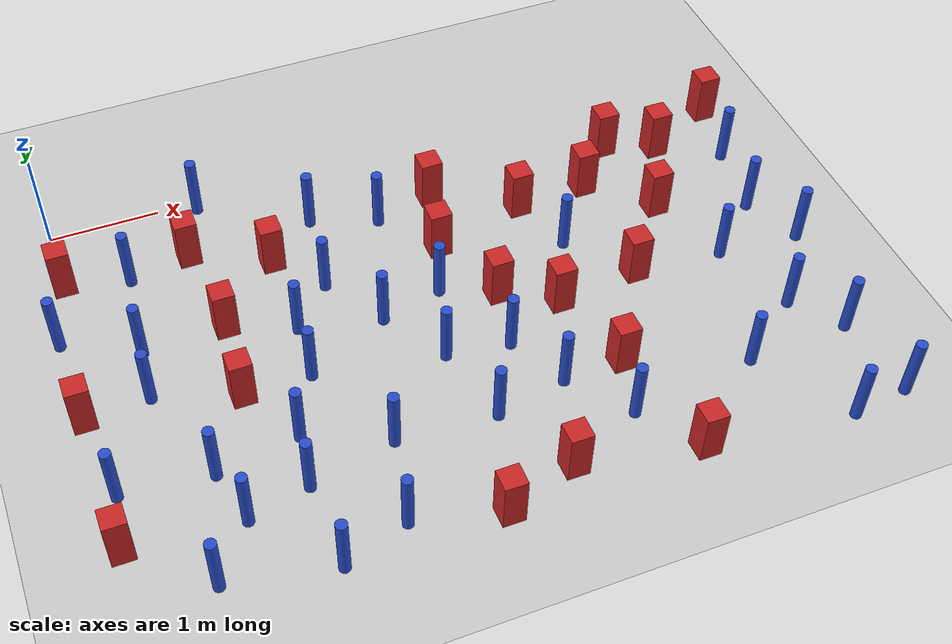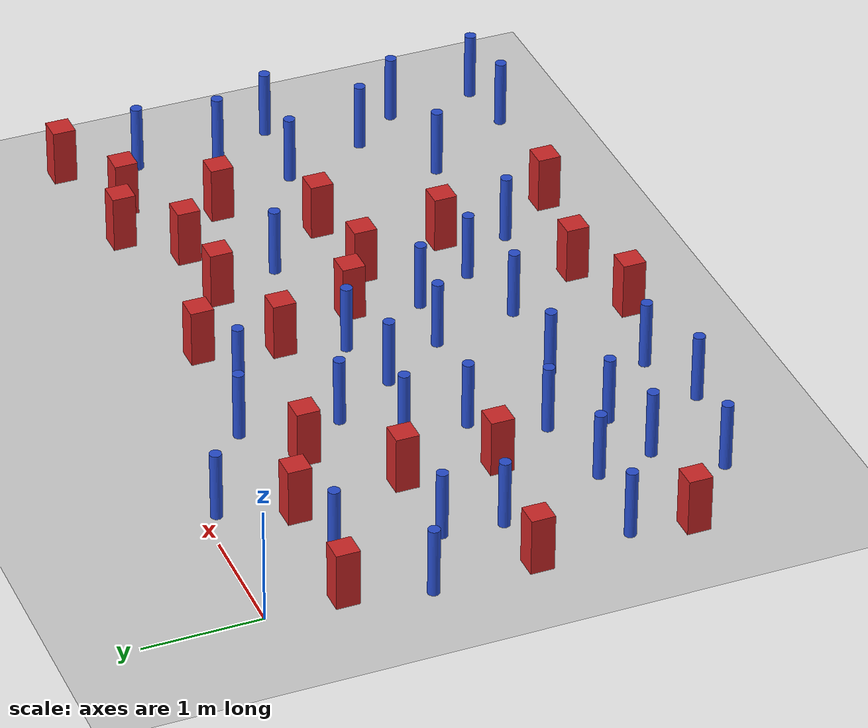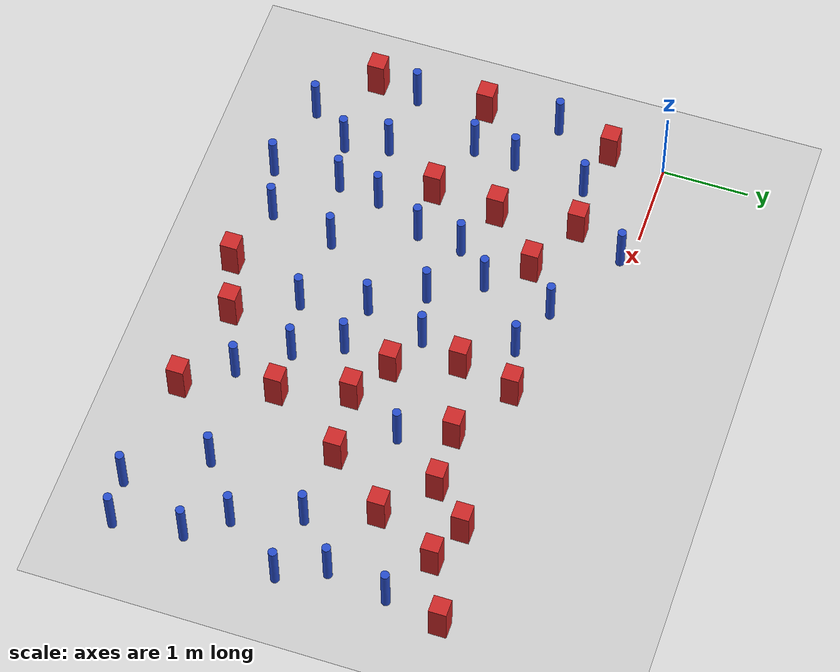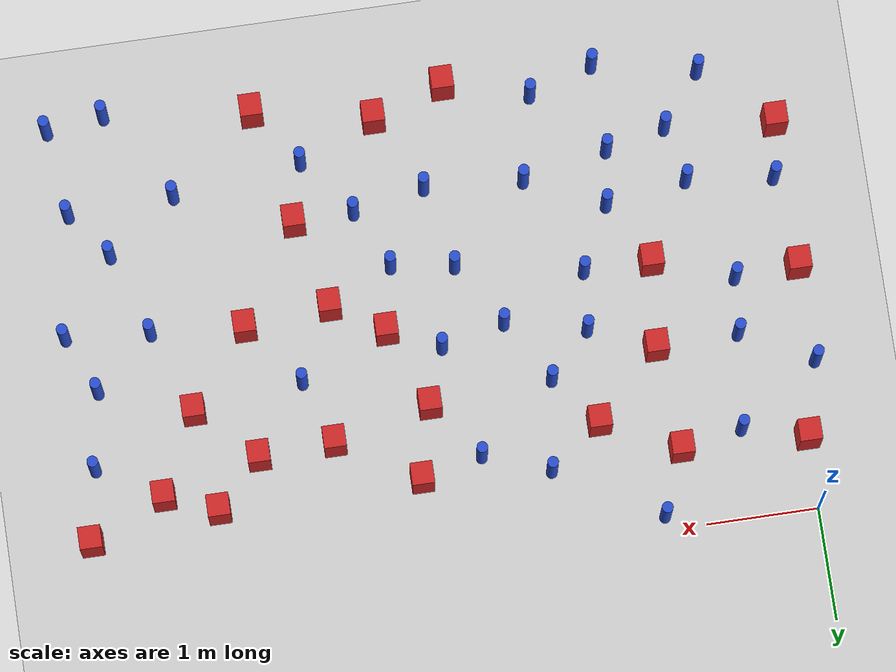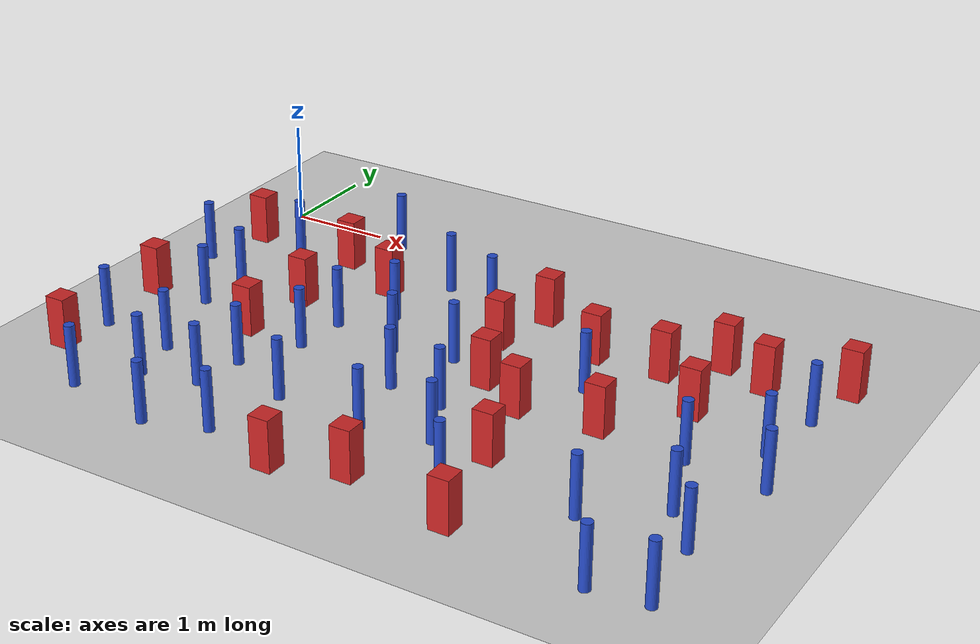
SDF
<sdf version="1.6">
 <world name="default">
  <model name="ground_plane">
   <static>1</static>
   <link name="link">
    <collision name="collision">
     <geometry><plane><normal>0 0 1</normal><size>100 100</size></plane></geometry>
     <surface><friction><ode><mu>100</mu><mu2>50</mu2></ode></friction></surface>
    </collision>
    <visual name="visual">
     <cast_shadows>0</cast_shadows>
     <geometry><plane><normal>0 0 1</normal><size>100 100</size></plane></geometry>
     <material>
      <ambient>1.0 1.0 1.0 1.0</ambient>
      <diffuse>0.8 0.8 0.8 1.0</diffuse>
      <specular>0.01 0.01 0.01 1.000000</specular>
     </material>
    </visual>
   </link>
  </model>
  <model name="pole_obstacle3">
   <static>true</static>
   <pose>3.44390057278 -2.68241851468 2.88873142074e-08 -9.90536690232e-09 4.6021994898e-07 -1.20965994968e-07</pose>
   <link name="link">
    <pose>0 0 0.3 0 -0 0</pose>
    <inertial>
     <mass>1</mass>
     <inertia><ixx>0.145833</ixx><ixy>0</ixy><ixz>0</ixz><iyy>0.145833</iyy><iyz>0</iyz><izz>0.125</izz></inertia>
    </inertial>
    <collision name="collision">
     <geometry><cylinder><radius>0.05</radius><length>.6</length></cylinder></geometry>
    </collision>
    <visual name="visual">
     <geometry><cylinder><radius>0.05</radius><length>.6</length></cylinder></geometry>
     <material>
      <script><name>Gazebo/Blue</name><uri>file://media/materials/scripts/gazebo.material</uri></script>
     </material>
    </visual>
   </link>
  </model>
  <model name="pole_obstacle12">
   <static>true</static>
   <pose>0.424822566646 -2.14659219355 2.88873142074e-08 -9.90536689663e-09 4.60219948993e-07 -1.20965994959e-07</pose>
   <link name="link">
    <pose>0 0 0.3 0 -0 0</pose>
    <inertial>
     <mass>1</mass>
     <inertia><ixx>0.145833</ixx><ixy>0</ixy><ixz>0</ixz><iyy>0.145833</iyy><iyz>0</iyz><izz>0.125</izz></inertia>
    </inertial>
    <collision name="collision">
     <geometry><cylinder><radius>0.05</radius><length>.6</length></cylinder></geometry>
    </collision>
    <visual name="visual">
     <geometry><cylinder><radius>0.05</radius><length>.6</length></cylinder></geometry>
     <material>
      <script><name>Gazebo/Blue</name><uri>file://media/materials/scripts/gazebo.material</uri></script>
     </material>
    </visual>
   </link>
  </model>
  <model name="pole_obstacle15">
   <static>true</static>
   <pose>4.36360542164 -1.75431057876 2.88873142074e-08 -9.90536689445e-09 4.60219948999e-07 -1.20965994956e-07</pose>
   <link name="link">
    <pose>0 0 0.3 0 -0 0</pose>
    <inertial>
     <mass>1</mass>
     <inertia><ixx>0.145833</ixx><ixy>0</ixy><ixz>0</ixz><iyy>0.145833</iyy><iyz>0</iyz><izz>0.125</izz></inertia>
    </inertial>
    <collision name="collision">
     <geometry><cylinder><radius>0.05</radius><length>.6</length></cylinder></geometry>
    </collision>
    <visual name="visual">
     <geometry><cylinder><radius>0.05</radius><length>.6</length></cylinder></geometry>
     <material>
      <script><name>Gazebo/Blue</name><uri>file://media/materials/scripts/gazebo.material</uri></script>
     </material>
    </visual>
   </link>
  </model>
  <model name="pole_obstacle34">
   <static>true</static>
   <pose>3.0510316653 -3.34758337727 2.88873142074e-08 -9.90536690232e-09 4.6021994898e-07 -1.20965994968e-07</pose>
   <link name="link">
    <pose>0 0 0.3 0 -0 0</pose>
    <inertial>
     <mass>1</mass>
     <inertia><ixx>0.145833</ixx><ixy>0</ixy><ixz>0</ixz><iyy>0.145833</iyy><iyz>0</iyz><izz>0.125</izz></inertia>
    </inertial>
    <collision name="collision">
     <geometry><cylinder><radius>0.05</radius><length>.6</length></cylinder></geometry>
    </collision>
    <visual name="visual">
     <geometry><cylinder><radius>0.05</radius><length>.6</length></cylinder></geometry>
     <material>
      <script><name>Gazebo/Blue</name><uri>file://media/materials/scripts/gazebo.material</uri></script>
     </material>
    </visual>
   </link>
  </model>
  <model name="square_post_obstacle31">
   <static>true</static>
   <pose>2.75952951863 -4.25308734683 8.22691968438e-08 7.22125133819e-06 -7.54495500217e-07 2.29674213826e-05</pose>
   <link name="link">
    <pose>0 0 0.25 0 -0 0</pose>
    <inertial>
     <mass>100</mass>
     <inertia>
      <ixx>0.166667</ixx>
      <ixy>0</ixy>
      <ixz>0</ixz>
      <iyy>0.166667</iyy>
      <iyz>0</iyz>
      <izz>0.166667</izz>
     </inertia>
    </inertial>
    <collision name="collision"><geometry><box><size>.2 .2 .5</size></box></geometry></collision>
    <visual name="visual">
     <geometry><box><size>.2 .2 .5</size></box></geometry>
     <material>
      <script><name>Gazebo/Red</name><uri>file://media/materials/scripts/gazebo.material</uri></script>
     </material>
    </visual>
   </link>
  </model>
  <model name="square_post_obstacle34">
   <static>true</static>
   <pose>4.24290436011 -3.19817687436 8.22691968438e-08 7.2212513382e-06 -7.54495500217e-07 2.29674213826e-05</pose>
   <link name="link">
    <pose>0 0 0.25 0 -0 0</pose>
    <inertial>
     <mass>100</mass>
     <inertia>
      <ixx>0.166667</ixx>
      <ixy>0</ixy>
      <ixz>0</ixz>
      <iyy>0.166667</iyy>
      <iyz>0</iyz>
      <izz>0.166667</izz>
     </inertia>
    </inertial>
    <collision name="collision"><geometry><box><size>.2 .2 .5</size></box></geometry></collision>
    <visual name="visual">
     <geometry><box><size>.2 .2 .5</size></box></geometry>
     <material>
      <script><name>Gazebo/Red</name><uri>file://media/materials/scripts/gazebo.material</uri></script>
     </material>
    </visual>
   </link>
  </model>
  <model name="pole_obstacle44">
   <static>true</static>
   <pose>3.09346758125 -1.89148213356 2.88873142074e-08 -9.90536689395e-09 4.60219949e-07 -1.20965994953e-07</pose>
   <link name="link">
    <pose>0 0 0.3 0 -0 0</pose>
    <inertial>
     <mass>1</mass>
     <inertia><ixx>0.145833</ixx><ixy>0</ixy><ixz>0</ixz><iyy>0.145833</iyy><iyz>0</iyz><izz>0.125</izz></inertia>
    </inertial>
    <collision name="collision">
     <geometry><cylinder><radius>0.05</radius><length>.6</length></cylinder></geometry>
    </collision>
    <visual name="visual">
     <geometry><cylinder><radius>0.05</radius><length>.6</length></cylinder></geometry>
     <material>
      <script><name>Gazebo/Blue</name><uri>file://media/materials/scripts/gazebo.material</uri></script>
     </material>
    </visual>
   </link>
  </model>
  <model name="pole_obstacle45">
   <static>true</static>
   <pose>2.16204232761 -3.28787041678 2.88873142074e-08 -9.90536690232e-09 4.6021994898e-07 -1.20965994968e-07</pose>
   <link name="link">
    <pose>0 0 0.3 0 -0 0</pose>
    <inertial>
     <mass>1</mass>
     <inertia><ixx>0.145833</ixx><ixy>0</ixy><ixz>0</ixz><iyy>0.145833</iyy><iyz>0</iyz><izz>0.125</izz></inertia>
    </inertial>
    <collision name="collision">
     <geometry><cylinder><radius>0.05</radius><length>.6</length></cylinder></geometry>
    </collision>
    <visual name="visual">
     <geometry><cylinder><radius>0.05</radius><length>.6</length></cylinder></geometry>
     <material>
      <script><name>Gazebo/Blue</name><uri>file://media/materials/scripts/gazebo.material</uri></script>
     </material>
    </visual>
   </link>
  </model>
  <model name="square_post_obstacle36">
   <static>true</static>
   <pose>3.56225931045 -2.10574706929 8.22691968438e-08 7.2212513382e-06 -7.54495500217e-07 2.29674213826e-05</pose>
   <link name="link">
    <pose>0 0 0.25 0 -0 0</pose>
    <inertial>
     <mass>100</mass>
     <inertia>
      <ixx>0.166667</ixx>
      <ixy>0</ixy>
      <ixz>0</ixz>
      <iyy>0.166667</iyy>
      <iyz>0</iyz>
      <izz>0.166667</izz>
     </inertia>
    </inertial>
    <collision name="collision"><geometry><box><size>.2 .2 .5</size></box></geometry></collision>
    <visual name="visual">
     <geometry><box><size>.2 .2 .5</size></box></geometry>
     <material>
      <script><name>Gazebo/Red</name><uri>file://media/materials/scripts/gazebo.material</uri></script>
     </material>
    </visual>
   </link>
  </model>
  <model name="square_post_obstacle37">
   <static>true</static>
   <pose>1.81397004332 -1.02523224052 8.22691968438e-08 7.2212513382e-06 -7.54495500217e-07 2.29674213826e-05</pose>
   <link name="link">
    <pose>0 0 0.25 0 -0 0</pose>
    <inertial>
     <mass>100</mass>
     <inertia>
      <ixx>0.166667</ixx>
      <ixy>0</ixy>
      <ixz>0</ixz>
      <iyy>0.166667</iyy>
      <iyz>0</iyz>
      <izz>0.166667</izz>
     </inertia>
    </inertial>
    <collision name="collision"><geometry><box><size>.2 .2 .5</size></box></geometry></collision>
    <visual name="visual">
     <geometry><box><size>.2 .2 .5</size></box></geometry>
     <material>
      <script><name>Gazebo/Red</name><uri>file://media/materials/scripts/gazebo.material</uri></script>
     </material>
    </visual>
   </link>
  </model>
  <model name="pole_obstacle52">
   <static>true</static>
   <pose>0.726385324433 -3.08385752263 2.88873142074e-08 -9.90536689636e-09 4.60219948994e-07 -1.20965994958e-07</pose>
   <link name="link">
    <pose>0 0 0.3 0 -0 0</pose>
    <inertial>
     <mass>1</mass>
     <inertia><ixx>0.145833</ixx><ixy>0</ixy><ixz>0</ixz><iyy>0.145833</iyy><iyz>0</iyz><izz>0.125</izz></inertia>
    </inertial>
    <collision name="collision">
     <geometry><cylinder><radius>0.05</radius><length>.6</length></cylinder></geometry>
    </collision>
    <visual name="visual">
     <geometry><cylinder><radius>0.05</radius><length>.6</length></cylinder></geometry>
     <material>
      <script><name>Gazebo/Blue</name><uri>file://media/materials/scripts/gazebo.material</uri></script>
     </material>
    </visual>
   </link>
  </model>
  <model name="square_post_obstacle45">
   <static>true</static>
   <pose>4.80310020649 -2.31193990285 8.22691968438e-08 7.2212513382e-06 -7.54495500217e-07 2.29674213826e-05</pose>
   <link name="link">
    <pose>0 0 0.25 0 -0 0</pose>
    <inertial>
     <mass>100</mass>
     <inertia>
      <ixx>0.166667</ixx>
      <ixy>0</ixy>
      <ixz>0</ixz>
      <iyy>0.166667</iyy>
      <iyz>0</iyz>
      <izz>0.166667</izz>
     </inertia>
    </inertial>
    <collision name="collision"><geometry><box><size>.2 .2 .5</size></box></geometry></collision>
    <visual name="visual">
     <geometry><box><size>.2 .2 .5</size></box></geometry>
     <material>
      <script><name>Gazebo/Red</name><uri>file://media/materials/scripts/gazebo.material</uri></script>
     </material>
    </visual>
   </link>
  </model>
  <model name="pole_obstacle61">
   <static>true</static>
   <pose>2.51964629609 -2.02960181023 2.88873142074e-08 -9.9053668955e-09 4.60219948996e-07 -1.20965994957e-07</pose>
   <link name="link">
    <pose>0 0 0.3 0 -0 0</pose>
    <inertial>
     <mass>1</mass>
     <inertia><ixx>0.145833</ixx><ixy>0</ixy><ixz>0</ixz><iyy>0.145833</iyy><iyz>0</iyz><izz>0.125</izz></inertia>
    </inertial>
    <collision name="collision">
     <geometry><cylinder><radius>0.05</radius><length>.6</length></cylinder></geometry>
    </collision>
    <visual name="visual">
     <geometry><cylinder><radius>0.05</radius><length>.6</length></cylinder></geometry>
     <material>
      <script><name>Gazebo/Blue</name><uri>file://media/materials/scripts/gazebo.material</uri></script>
     </material>
    </visual>
   </link>
  </model>
  <model name="pole_obstacle65">
   <static>true</static>
   <pose>5.79967173309 -4.39939911104 2.88873142074e-08 -9.90536690842e-09 4.60219948965e-07 -1.20965994976e-07</pose>
   <link name="link">
    <pose>0 0 0.3 0 -0 0</pose>
    <inertial>
     <mass>1</mass>
     <inertia><ixx>0.145833</ixx><ixy>0</ixy><ixz>0</ixz><iyy>0.145833</iyy><iyz>0</iyz><izz>0.125</izz></inertia>
    </inertial>
    <collision name="collision">
     <geometry><cylinder><radius>0.05</radius><length>.6</length></cylinder></geometry>
    </collision>
    <visual name="visual">
     <geometry><cylinder><radius>0.05</radius><length>.6</length></cylinder></geometry>
     <material>
      <script><name>Gazebo/Blue</name><uri>file://media/materials/scripts/gazebo.material</uri></script>
     </material>
    </visual>
   </link>
  </model>
  <model name="pole_obstacle66">
   <static>true</static>
   <pose>6.17075399183 -1.92445890788 2.88873142074e-08 -9.90536689445e-09 4.60219948999e-07 -1.20965994956e-07</pose>
   <link name="link">
    <pose>0 0 0.3 0 -0 0</pose>
    <inertial>
     <mass>1</mass>
     <inertia><ixx>0.145833</ixx><ixy>0</ixy><ixz>0</ixz><iyy>0.145833</iyy><iyz>0</iyz><izz>0.125</izz></inertia>
    </inertial>
    <collision name="collision">
     <geometry><cylinder><radius>0.05</radius><length>.6</length></cylinder></geometry>
    </collision>
    <visual name="visual">
     <geometry><cylinder><radius>0.05</radius><length>.6</length></cylinder></geometry>
     <material>
      <script><name>Gazebo/Blue</name><uri>file://media/materials/scripts/gazebo.material</uri></script>
     </material>
    </visual>
   </link>
  </model>
  <model name="square_post_obstacle53">
   <static>true</static>
   <pose>1.21595934458 -1.6210169275 8.22691968438e-08 7.2212513382e-06 -7.54495500217e-07 2.29674213826e-05</pose>
   <link name="link">
    <pose>0 0 0.25 0 -0 0</pose>
    <inertial>
     <mass>100</mass>
     <inertia>
      <ixx>0.166667</ixx>
      <ixy>0</ixy>
      <ixz>0</ixz>
      <iyy>0.166667</iyy>
      <iyz>0</iyz>
      <izz>0.166667</izz>
     </inertia>
    </inertial>
    <collision name="collision"><geometry><box><size>.2 .2 .5</size></box></geometry></collision>
    <visual name="visual">
     <geometry><box><size>.2 .2 .5</size></box></geometry>
     <material>
      <script><name>Gazebo/Red</name><uri>file://media/materials/scripts/gazebo.material</uri></script>
     </material>
    </visual>
   </link>
  </model>
  <model name="pole_obstacle72">
   <static>true</static>
   <pose>3.7025279139 -3.21415235285 2.88873142074e-08 -9.90536690232e-09 4.6021994898e-07 -1.20965994968e-07</pose>
   <link name="link">
    <pose>0 0 0.3 0 -0 0</pose>
    <inertial>
     <mass>1</mass>
     <inertia><ixx>0.145833</ixx><ixy>0</ixy><ixz>0</ixz><iyy>0.145833</iyy><iyz>0</iyz><izz>0.125</izz></inertia>
    </inertial>
    <collision name="collision">
     <geometry><cylinder><radius>0.05</radius><length>.6</length></cylinder></geometry>
    </collision>
    <visual name="visual">
     <geometry><cylinder><radius>0.05</radius><length>.6</length></cylinder></geometry>
     <material>
      <script><name>Gazebo/Blue</name><uri>file://media/materials/scripts/gazebo.material</uri></script>
     </material>
    </visual>
   </link>
  </model>
  <model name="square_post_obstacle67">
   <static>true</static>
   <pose>1.14408556625 -2.39514566028 8.22691968438e-08 7.2212513382e-06 -7.54495500217e-07 2.29674213826e-05</pose>
   <link name="link">
    <pose>0 0 0.25 0 -0 0</pose>
    <inertial>
     <mass>100</mass>
     <inertia>
      <ixx>0.166667</ixx>
      <ixy>0</ixy>
      <ixz>0</ixz>
      <iyy>0.166667</iyy>
      <iyz>0</iyz>
      <izz>0.166667</izz>
     </inertia>
    </inertial>
    <collision name="collision"><geometry><box><size>.2 .2 .5</size></box></geometry></collision>
    <visual name="visual">
     <geometry><box><size>.2 .2 .5</size></box></geometry>
     <material>
      <script><name>Gazebo/Red</name><uri>file://media/materials/scripts/gazebo.material</uri></script>
     </material>
    </visual>
   </link>
  </model>
  <model name="square_post_obstacle76">
   <static>true</static>
   <pose>5.24852123912 -0.716517219625 8.22691968438e-08 7.2212513382e-06 -7.54495500217e-07 2.29674213826e-05</pose>
   <link name="link">
    <pose>0 0 0.25 0 -0 0</pose>
    <inertial>
     <mass>100</mass>
     <inertia>
      <ixx>0.166667</ixx>
      <ixy>0</ixy>
      <ixz>0</ixz>
      <iyy>0.166667</iyy>
      <iyz>0</iyz>
      <izz>0.166667</izz>
     </inertia>
    </inertial>
    <collision name="collision"><geometry><box><size>.2 .2 .5</size></box></geometry></collision>
    <visual name="visual">
     <geometry><box><size>.2 .2 .5</size></box></geometry>
     <material>
      <script><name>Gazebo/Red</name><uri>file://media/materials/scripts/gazebo.material</uri></script>
     </material>
    </visual>
   </link>
  </model>
  <model name="pole_obstacle101">
   <static>true</static>
   <pose>0.478650169329 -4.06065488228 2.88873142074e-08 -9.90536689616e-09 4.60219948994e-07 -1.20965994955e-07</pose>
   <link name="link">
    <pose>0 0 0.3 0 -0 0</pose>
    <inertial>
     <mass>1</mass>
     <inertia><ixx>0.145833</ixx><ixy>0</ixy><ixz>0</ixz><iyy>0.145833</iyy><iyz>0</iyz><izz>0.125</izz></inertia>
    </inertial>
    <collision name="collision">
     <geometry><cylinder><radius>0.05</radius><length>.6</length></cylinder></geometry>
    </collision>
    <visual name="visual">
     <geometry><cylinder><radius>0.05</radius><length>.6</length></cylinder></geometry>
     <material>
      <script><name>Gazebo/Blue</name><uri>file://media/materials/scripts/gazebo.material</uri></script>
     </material>
    </visual>
   </link>
  </model>
  <model name="square_post_obstacle98">
   <static>true</static>
   <pose>0.00567447583688 -0.642046307654 8.22691968438e-08 7.2212513382e-06 -7.54495500217e-07 2.29674213826e-05</pose>
   <link name="link">
    <pose>0 0 0.25 0 -0 0</pose>
    <inertial>
     <mass>100</mass>
     <inertia>
      <ixx>0.166667</ixx>
      <ixy>0</ixy>
      <ixz>0</ixz>
      <iyy>0.166667</iyy>
      <iyz>0</iyz>
      <izz>0.166667</izz>
     </inertia>
    </inertial>
    <collision name="collision"><geometry><box><size>.2 .2 .5</size></box></geometry></collision>
    <visual name="visual">
     <geometry><box><size>.2 .2 .5</size></box></geometry>
     <material>
      <script><name>Gazebo/Red</name><uri>file://media/materials/scripts/gazebo.material</uri></script>
     </material>
    </visual>
   </link>
  </model>
  <model name="pole_obstacle108">
   <static>true</static>
   <pose>1.38805032513 -3.45853373213 2.88873142074e-08 -9.90536689791e-09 4.6021994899e-07 -1.20965994959e-07</pose>
   <link name="link">
    <pose>0 0 0.3 0 -0 0</pose>
    <inertial>
     <mass>1</mass>
     <inertia><ixx>0.145833</ixx><ixy>0</ixy><ixz>0</ixz><iyy>0.145833</iyy><iyz>0</iyz><izz>0.125</izz></inertia>
    </inertial>
    <collision name="collision">
     <geometry><cylinder><radius>0.05</radius><length>.6</length></cylinder></geometry>
    </collision>
    <visual name="visual">
     <geometry><cylinder><radius>0.05</radius><length>.6</length></cylinder></geometry>
     <material>
      <script><name>Gazebo/Blue</name><uri>file://media/materials/scripts/gazebo.material</uri></script>
     </material>
    </visual>
   </link>
  </model>
  <model name="pole_obstacle111">
   <static>true</static>
   <pose>2.28952541221 -0.654954358884 2.88873142074e-08 -9.90536689285e-09 4.60219949002e-07 -1.20965994953e-07</pose>
   <link name="link">
    <pose>0 0 0.3 0 -0 0</pose>
    <inertial>
     <mass>1</mass>
     <inertia><ixx>0.145833</ixx><ixy>0</ixy><ixz>0</ixz><iyy>0.145833</iyy><iyz>0</iyz><izz>0.125</izz></inertia>
    </inertial>
    <collision name="collision">
     <geometry><cylinder><radius>0.05</radius><length>.6</length></cylinder></geometry>
    </collision>
    <visual name="visual">
     <geometry><cylinder><radius>0.05</radius><length>.6</length></cylinder></geometry>
     <material>
      <script><name>Gazebo/Blue</name><uri>file://media/materials/scripts/gazebo.material</uri></script>
     </material>
    </visual>
   </link>
  </model>
  <model name="pole_obstacle126">
   <static>true</static>
   <pose>1.79387767147 -1.86467380096 2.88873142074e-08 -9.90536689672e-09 4.60219948993e-07 -1.20965994959e-07</pose>
   <link name="link">
    <pose>0 0 0.3 0 -0 0</pose>
    <inertial>
     <mass>1</mass>
     <inertia><ixx>0.145833</ixx><ixy>0</ixy><ixz>0</ixz><iyy>0.145833</iyy><iyz>0</iyz><izz>0.125</izz></inertia>
    </inertial>
    <collision name="collision">
     <geometry><cylinder><radius>0.05</radius><length>.6</length></cylinder></geometry>
    </collision>
    <visual name="visual">
     <geometry><cylinder><radius>0.05</radius><length>.6</length></cylinder></geometry>
     <material>
      <script><name>Gazebo/Blue</name><uri>file://media/materials/scripts/gazebo.material</uri></script>
     </material>
    </visual>
   </link>
  </model>
  <model name="square_post_obstacle123">
   <static>true</static>
   <pose>5.35264397972 -1.62712270653 8.22691968438e-08 7.2212513382e-06 -7.54495500217e-07 2.29674213826e-05</pose>
   <link name="link">
    <pose>0 0 0.25 0 -0 0</pose>
    <inertial>
     <mass>100</mass>
     <inertia>
      <ixx>0.166667</ixx>
      <ixy>0</ixy>
      <ixz>0</ixz>
      <iyy>0.166667</iyy>
      <iyz>0</iyz>
      <izz>0.166667</izz>
     </inertia>
    </inertial>
    <collision name="collision"><geometry><box><size>.2 .2 .5</size></box></geometry></collision>
    <visual name="visual">
     <geometry><box><size>.2 .2 .5</size></box></geometry>
     <material>
      <script><name>Gazebo/Red</name><uri>file://media/materials/scripts/gazebo.material</uri></script>
     </material>
    </visual>
   </link>
  </model>
  <model name="square_post_obstacle125">
   <static>true</static>
   <pose>1.13019518236 -0.687255394323 8.22691968438e-08 7.2212513382e-06 -7.54495500217e-07 2.29674213826e-05</pose>
   <link name="link">
    <pose>0 0 0.25 0 -0 0</pose>
    <inertial>
     <mass>100</mass>
     <inertia>
      <ixx>0.166667</ixx>
      <ixy>0</ixy>
      <ixz>0</ixz>
      <iyy>0.166667</iyy>
      <iyz>0</iyz>
      <izz>0.166667</izz>
     </inertia>
    </inertial>
    <collision name="collision"><geometry><box><size>.2 .2 .5</size></box></geometry></collision>
    <visual name="visual">
     <geometry><box><size>.2 .2 .5</size></box></geometry>
     <material>
      <script><name>Gazebo/Red</name><uri>file://media/materials/scripts/gazebo.material</uri></script>
     </material>
    </visual>
   </link>
  </model>
  <model name="pole_obstacle133">
   <static>true</static>
   <pose>1.40842903042 -4.24632810452 2.88873142074e-08 -9.90536689852e-09 4.60219948989e-07 -1.2096599496e-07</pose>
   <link name="link">
    <pose>0 0 0.3 0 -0 0</pose>
    <inertial>
     <mass>1</mass>
     <inertia><ixx>0.145833</ixx><ixy>0</ixy><ixz>0</ixz><iyy>0.145833</iyy><iyz>0</iyz><izz>0.125</izz></inertia>
    </inertial>
    <collision name="collision">
     <geometry><cylinder><radius>0.05</radius><length>.6</length></cylinder></geometry>
    </collision>
    <visual name="visual">
     <geometry><cylinder><radius>0.05</radius><length>.6</length></cylinder></geometry>
     <material>
      <script><name>Gazebo/Blue</name><uri>file://media/materials/scripts/gazebo.material</uri></script>
     </material>
    </visual>
   </link>
  </model>
  <model name="pole_obstacle134">
   <static>true</static>
   <pose>5.63955975305 -2.38056988034 2.88873142074e-08 -9.90536690245e-09 4.6021994898e-07 -1.20965994966e-07</pose>
   <link name="link">
    <pose>0 0 0.3 0 -0 0</pose>
    <inertial>
     <mass>1</mass>
     <inertia><ixx>0.145833</ixx><ixy>0</ixy><ixz>0</ixz><iyy>0.145833</iyy><iyz>0</iyz><izz>0.125</izz></inertia>
    </inertial>
    <collision name="collision">
     <geometry><cylinder><radius>0.05</radius><length>.6</length></cylinder></geometry>
    </collision>
    <visual name="visual">
     <geometry><cylinder><radius>0.05</radius><length>.6</length></cylinder></geometry>
     <material>
      <script><name>Gazebo/Blue</name><uri>file://media/materials/scripts/gazebo.material</uri></script>
     </material>
    </visual>
   </link>
  </model>
  <model name="pole_obstacle136">
   <static>true</static>
   <pose>-0.0565508192512 -3.00083900364 2.88873142074e-08 -9.90536692535e-09 4.60219948925e-07 -1.2096599499e-07</pose>
   <link name="link">
    <pose>0 0 0.3 0 -0 0</pose>
    <inertial>
     <mass>1</mass>
     <inertia><ixx>0.145833</ixx><ixy>0</ixy><ixz>0</ixz><iyy>0.145833</iyy><iyz>0</iyz><izz>0.125</izz></inertia>
    </inertial>
    <collision name="collision">
     <geometry><cylinder><radius>0.05</radius><length>.6</length></cylinder></geometry>
    </collision>
    <visual name="visual">
     <geometry><cylinder><radius>0.05</radius><length>.6</length></cylinder></geometry>
     <material>
      <script><name>Gazebo/Blue</name><uri>file://media/materials/scripts/gazebo.material</uri></script>
     </material>
    </visual>
   </link>
  </model>
  <model name="pole_obstacle146">
   <static>true</static>
   <pose>5.27447690551 -3.5860679777 2.88873142074e-08 -9.90536690245e-09 4.6021994898e-07 -1.20965994966e-07</pose>
   <link name="link">
    <pose>0 0 0.3 0 -0 0</pose>
    <inertial>
     <mass>1</mass>
     <inertia><ixx>0.145833</ixx><ixy>0</ixy><ixz>0</ixz><iyy>0.145833</iyy><iyz>0</iyz><izz>0.125</izz></inertia>
    </inertial>
    <collision name="collision">
     <geometry><cylinder><radius>0.05</radius><length>.6</length></cylinder></geometry>
    </collision>
    <visual name="visual">
     <geometry><cylinder><radius>0.05</radius><length>.6</length></cylinder></geometry>
     <material>
      <script><name>Gazebo/Blue</name><uri>file://media/materials/scripts/gazebo.material</uri></script>
     </material>
    </visual>
   </link>
  </model>
  <model name="square_post_obstacle141">
   <static>true</static>
   <pose>4.48025088239 -4.24490141962 8.22691968438e-08 7.2212513382e-06 -7.54495500217e-07 2.29674213826e-05</pose>
   <link name="link">
    <pose>0 0 0.25 0 -0 0</pose>
    <inertial>
     <mass>100</mass>
     <inertia>
      <ixx>0.166667</ixx>
      <ixy>0</ixy>
      <ixz>0</ixz>
      <iyy>0.166667</iyy>
      <iyz>0</iyz>
      <izz>0.166667</izz>
     </inertia>
    </inertial>
    <collision name="collision"><geometry><box><size>.2 .2 .5</size></box></geometry></collision>
    <visual name="visual">
     <geometry><box><size>.2 .2 .5</size></box></geometry>
     <material>
      <script><name>Gazebo/Red</name><uri>file://media/materials/scripts/gazebo.material</uri></script>
     </material>
    </visual>
   </link>
  </model>
  <model name="square_post_obstacle147">
   <static>true</static>
   <pose>4.03266309535 -2.39488780692 8.22691968438e-08 7.2212513382e-06 -7.54495500217e-07 2.29674213826e-05</pose>
   <link name="link">
    <pose>0 0 0.25 0 -0 0</pose>
    <inertial>
     <mass>100</mass>
     <inertia>
      <ixx>0.166667</ixx>
      <ixy>0</ixy>
      <ixz>0</ixz>
      <iyy>0.166667</iyy>
      <iyz>0</iyz>
      <izz>0.166667</izz>
     </inertia>
    </inertial>
    <collision name="collision"><geometry><box><size>.2 .2 .5</size></box></geometry></collision>
    <visual name="visual">
     <geometry><box><size>.2 .2 .5</size></box></geometry>
     <material>
      <script><name>Gazebo/Red</name><uri>file://media/materials/scripts/gazebo.material</uri></script>
     </material>
    </visual>
   </link>
  </model>
  <model name="square_post_obstacle148">
   <static>true</static>
   <pose>4.15664895691 -1.17455899612 8.22691968438e-08 7.2212513382e-06 -7.54495500217e-07 2.29674213826e-05</pose>
   <link name="link">
    <pose>0 0 0.25 0 -0 0</pose>
    <inertial>
     <mass>100</mass>
     <inertia>
      <ixx>0.166667</ixx>
      <ixy>0</ixy>
      <ixz>0</ixz>
      <iyy>0.166667</iyy>
      <iyz>0</iyz>
      <izz>0.166667</izz>
     </inertia>
    </inertial>
    <collision name="collision"><geometry><box><size>.2 .2 .5</size></box></geometry></collision>
    <visual name="visual">
     <geometry><box><size>.2 .2 .5</size></box></geometry>
     <material>
      <script><name>Gazebo/Red</name><uri>file://media/materials/scripts/gazebo.material</uri></script>
     </material>
    </visual>
   </link>
  </model>
  <model name="pole_obstacle162">
   <static>true</static>
   <pose>5.90314339456 -3.12809181744 2.88873142074e-08 -9.90536690245e-09 4.6021994898e-07 -1.20965994966e-07</pose>
   <link name="link">
    <pose>0 0 0.3 0 -0 0</pose>
    <inertial>
     <mass>1</mass>
     <inertia><ixx>0.145833</ixx><ixy>0</ixy><ixz>0</ixz><iyy>0.145833</iyy><iyz>0</iyz><izz>0.125</izz></inertia>
    </inertial>
    <collision name="collision">
     <geometry><cylinder><radius>0.05</radius><length>.6</length></cylinder></geometry>
    </collision>
    <visual name="visual">
     <geometry><cylinder><radius>0.05</radius><length>.6</length></cylinder></geometry>
     <material>
      <script><name>Gazebo/Blue</name><uri>file://media/materials/scripts/gazebo.material</uri></script>
     </material>
    </visual>
   </link>
  </model>
  <model name="square_post_obstacle163">
   <static>true</static>
   <pose>6.39876457684 -0.588968505366 8.22691968438e-08 7.2212513382e-06 -7.54495500217e-07 2.29674213826e-05</pose>
   <link name="link">
    <pose>0 0 0.25 0 -0 0</pose>
    <inertial>
     <mass>100</mass>
     <inertia>
      <ixx>0.166667</ixx>
      <ixy>0</ixy>
      <ixz>0</ixz>
      <iyy>0.166667</iyy>
      <iyz>0</iyz>
      <izz>0.166667</izz>
     </inertia>
    </inertial>
    <collision name="collision"><geometry><box><size>.2 .2 .5</size></box></geometry></collision>
    <visual name="visual">
     <geometry><box><size>.2 .2 .5</size></box></geometry>
     <material>
      <script><name>Gazebo/Red</name><uri>file://media/materials/scripts/gazebo.material</uri></script>
     </material>
    </visual>
   </link>
  </model>
  <model name="pole_obstacle166">
   <static>true</static>
   <pose>6.28476533647 -1.2334750411 2.88873142074e-08 -9.90536689445e-09 4.60219948999e-07 -1.20965994956e-07</pose>
   <link name="link">
    <pose>0 0 0.3 0 -0 0</pose>
    <inertial>
     <mass>1</mass>
     <inertia><ixx>0.145833</ixx><ixy>0</ixy><ixz>0</ixz><iyy>0.145833</iyy><iyz>0</iyz><izz>0.125</izz></inertia>
    </inertial>
    <collision name="collision">
     <geometry><cylinder><radius>0.05</radius><length>.6</length></cylinder></geometry>
    </collision>
    <visual name="visual">
     <geometry><cylinder><radius>0.05</radius><length>.6</length></cylinder></geometry>
     <material>
      <script><name>Gazebo/Blue</name><uri>file://media/materials/scripts/gazebo.material</uri></script>
     </material>
    </visual>
   </link>
  </model>
  <model name="pole_obstacle170">
   <static>true</static>
   <pose>-0.169045473421 -1.30887056522 2.88873142074e-08 -9.90536689579e-09 4.60219948995e-07 -1.20965994956e-07</pose>
   <link name="link">
    <pose>0 0 0.3 0 -0 0</pose>
    <inertial>
     <mass>1</mass>
     <inertia><ixx>0.145833</ixx><ixy>0</ixy><ixz>0</ixz><iyy>0.145833</iyy><iyz>0</iyz><izz>0.125</izz></inertia>
    </inertial>
    <collision name="collision">
     <geometry><cylinder><radius>0.05</radius><length>.6</length></cylinder></geometry>
    </collision>
    <visual name="visual">
     <geometry><cylinder><radius>0.05</radius><length>.6</length></cylinder></geometry>
     <material>
      <script><name>Gazebo/Blue</name><uri>file://media/materials/scripts/gazebo.material</uri></script>
     </material>
    </visual>
   </link>
  </model>
  <model name="square_post_obstacle179">
   <static>true</static>
   <pose>4.83645323461 -1.14035673554 8.22691968438e-08 7.2212513382e-06 -7.54495500217e-07 2.29674213826e-05</pose>
   <link name="link">
    <pose>0 0 0.25 0 -0 0</pose>
    <inertial>
     <mass>100</mass>
     <inertia>
      <ixx>0.166667</ixx>
      <ixy>0</ixy>
      <ixz>0</ixz>
      <iyy>0.166667</iyy>
      <iyz>0</iyz>
      <izz>0.166667</izz>
     </inertia>
    </inertial>
    <collision name="collision"><geometry><box><size>.2 .2 .5</size></box></geometry></collision>
    <visual name="visual">
     <geometry><box><size>.2 .2 .5</size></box></geometry>
     <material>
      <script><name>Gazebo/Red</name><uri>file://media/materials/scripts/gazebo.material</uri></script>
     </material>
    </visual>
   </link>
  </model>
  <model name="pole_obstacle185">
   <static>true</static>
   <pose>2.88433739516 -0.873487718742 2.88873142074e-08 -9.90536689285e-09 4.60219949002e-07 -1.20965994953e-07</pose>
   <link name="link">
    <pose>0 0 0.3 0 -0 0</pose>
    <inertial>
     <mass>1</mass>
     <inertia><ixx>0.145833</ixx><ixy>0</ixy><ixz>0</ixz><iyy>0.145833</iyy><iyz>0</iyz><izz>0.125</izz></inertia>
    </inertial>
    <collision name="collision">
     <geometry><cylinder><radius>0.05</radius><length>.6</length></cylinder></geometry>
    </collision>
    <visual name="visual">
     <geometry><cylinder><radius>0.05</radius><length>.6</length></cylinder></geometry>
     <material>
      <script><name>Gazebo/Blue</name><uri>file://media/materials/scripts/gazebo.material</uri></script>
     </material>
    </visual>
   </link>
  </model>
  <model name="square_post_obstacle187">
   <static>true</static>
   <pose>3.43570377833 -0.739117335345 8.22691968438e-08 7.2212513382e-06 -7.54495500217e-07 2.29674213826e-05</pose>
   <link name="link">
    <pose>0 0 0.25 0 -0 0</pose>
    <inertial>
     <mass>100</mass>
     <inertia>
      <ixx>0.166667</ixx>
      <ixy>0</ixy>
      <ixz>0</ixz>
      <iyy>0.166667</iyy>
      <iyz>0</iyz>
      <izz>0.166667</izz>
     </inertia>
    </inertial>
    <collision name="collision"><geometry><box><size>.2 .2 .5</size></box></geometry></collision>
    <visual name="visual">
     <geometry><box><size>.2 .2 .5</size></box></geometry>
     <material>
      <script><name>Gazebo/Red</name><uri>file://media/materials/scripts/gazebo.material</uri></script>
     </material>
    </visual>
   </link>
  </model>
  <model name="square_post_obstacle191">
   <static>true</static>
   <pose>5.71565655853 -0.903479717903 8.22691968438e-08 7.2212513382e-06 -7.54495500217e-07 2.29674213826e-05</pose>
   <link name="link">
    <pose>0 0 0.25 0 -0 0</pose>
    <inertial>
     <mass>100</mass>
     <inertia>
      <ixx>0.166667</ixx>
      <ixy>0</ixy>
      <ixz>0</ixz>
      <iyy>0.166667</iyy>
      <iyz>0</iyz>
      <izz>0.166667</izz>
     </inertia>
    </inertial>
    <collision name="collision"><geometry><box><size>.2 .2 .5</size></box></geometry></collision>
    <visual name="visual">
     <geometry><box><size>.2 .2 .5</size></box></geometry>
     <material>
      <script><name>Gazebo/Red</name><uri>file://media/materials/scripts/gazebo.material</uri></script>
     </material>
    </visual>
   </link>
  </model>
  <model name="square_post_obstacle198">
   <static>true</static>
   <pose>3.27651902242 -1.38908136322 8.22691968438e-08 7.2212513382e-06 -7.54495500217e-07 2.29674213826e-05</pose>
   <link name="link">
    <pose>0 0 0.25 0 -0 0</pose>
    <inertial>
     <mass>100</mass>
     <inertia>
      <ixx>0.166667</ixx>
      <ixy>0</ixy>
      <ixz>0</ixz>
      <iyy>0.166667</iyy>
      <iyz>0</iyz>
      <izz>0.166667</izz>
     </inertia>
    </inertial>
    <collision name="collision"><geometry><box><size>.2 .2 .5</size></box></geometry></collision>
    <visual name="visual">
     <geometry><box><size>.2 .2 .5</size></box></geometry>
     <material>
      <script><name>Gazebo/Red</name><uri>file://media/materials/scripts/gazebo.material</uri></script>
     </material>
    </visual>
   </link>
  </model>
  <model name="pole_obstacle191">
   <static>true</static>
   <pose>0.473904481135 -1.64291263225 2.88873142074e-08 -9.90536689915e-09 4.60219948987e-07 -1.20965994962e-07</pose>
   <link name="link">
    <pose>0 0 0.3 0 -0 0</pose>
    <inertial>
     <mass>1</mass>
     <inertia><ixx>0.145833</ixx><ixy>0</ixy><ixz>0</ixz><iyy>0.145833</iyy><iyz>0</iyz><izz>0.125</izz></inertia>
    </inertial>
    <collision name="collision">
     <geometry><cylinder><radius>0.05</radius><length>.6</length></cylinder></geometry>
    </collision>
    <visual name="visual">
     <geometry><cylinder><radius>0.05</radius><length>.6</length></cylinder></geometry>
     <material>
      <script><name>Gazebo/Blue</name><uri>file://media/materials/scripts/gazebo.material</uri></script>
     </material>
    </visual>
   </link>
  </model>
  <model name="square_post_obstacle204">
   <static>true</static>
   <pose>-0.134382490707 -3.50543523203 8.22691968438e-08 7.2212513382e-06 -7.54495500217e-07 2.29674213826e-05</pose>
   <link name="link">
    <pose>0 0 0.25 0 -0 0</pose>
    <inertial>
     <mass>100</mass>
     <inertia>
      <ixx>0.166667</ixx>
      <ixy>0</ixy>
      <ixz>0</ixz>
      <iyy>0.166667</iyy>
      <iyz>0</iyz>
      <izz>0.166667</izz>
     </inertia>
    </inertial>
    <collision name="collision"><geometry><box><size>.2 .2 .5</size></box></geometry></collision>
    <visual name="visual">
     <geometry><box><size>.2 .2 .5</size></box></geometry>
     <material>
      <script><name>Gazebo/Red</name><uri>file://media/materials/scripts/gazebo.material</uri></script>
     </material>
    </visual>
   </link>
  </model>
  <model name="square_post_obstacle210">
   <static>true</static>
   <pose>-0.142875697708 -2.18176192951 8.22691968438e-08 7.2212513382e-06 -7.54495500217e-07 2.29674213826e-05</pose>
   <link name="link">
    <pose>0 0 0.25 0 -0 0</pose>
    <inertial>
     <mass>100</mass>
     <inertia>
      <ixx>0.166667</ixx>
      <ixy>0</ixy>
      <ixz>0</ixz>
      <iyy>0.166667</iyy>
      <iyz>0</iyz>
      <izz>0.166667</izz>
     </inertia>
    </inertial>
    <collision name="collision"><geometry><box><size>.2 .2 .5</size></box></geometry></collision>
    <visual name="visual">
     <geometry><box><size>.2 .2 .5</size></box></geometry>
     <material>
      <script><name>Gazebo/Red</name><uri>file://media/materials/scripts/gazebo.material</uri></script>
     </material>
    </visual>
   </link>
  </model>
  <model name="square_post_obstacle213">
   <static>true</static>
   <pose>3.41015103168 -4.03563937178 8.22691968438e-08 7.2212513382e-06 -7.54495500217e-07 2.29674213826e-05</pose>
   <link name="link">
    <pose>0 0 0.25 0 -0 0</pose>
    <inertial>
     <mass>100</mass>
     <inertia>
      <ixx>0.166667</ixx>
      <ixy>0</ixy>
      <ixz>0</ixz>
      <iyy>0.166667</iyy>
      <iyz>0</iyz>
      <izz>0.166667</izz>
     </inertia>
    </inertial>
    <collision name="collision"><geometry><box><size>.2 .2 .5</size></box></geometry></collision>
    <visual name="visual">
     <geometry><box><size>.2 .2 .5</size></box></geometry>
     <material>
      <script><name>Gazebo/Red</name><uri>file://media/materials/scripts/gazebo.material</uri></script>
     </material>
    </visual>
   </link>
  </model>
  <model name="pole_obstacle193">
   <static>true</static>
   <pose>6.22570515988 -3.54602864797 2.88873142074e-08 -9.90536690245e-09 4.6021994898e-07 -1.20965994966e-07</pose>
   <link name="link">
    <pose>0 0 0.3 0 -0 0</pose>
    <inertial>
     <mass>1</mass>
     <inertia><ixx>0.145833</ixx><ixy>0</ixy><ixz>0</ixz><iyy>0.145833</iyy><iyz>0</iyz><izz>0.125</izz></inertia>
    </inertial>
    <collision name="collision">
     <geometry><cylinder><radius>0.05</radius><length>.6</length></cylinder></geometry>
    </collision>
    <visual name="visual">
     <geometry><cylinder><radius>0.05</radius><length>.6</length></cylinder></geometry>
     <material>
      <script><name>Gazebo/Blue</name><uri>file://media/materials/scripts/gazebo.material</uri></script>
     </material>
    </visual>
   </link>
  </model>
  <model name="pole_obstacle197">
   <static>true</static>
   <pose>6.39672428725 -2.44248929777 2.88873142074e-08 -9.90536690245e-09 4.6021994898e-07 -1.20965994966e-07</pose>
   <link name="link">
    <pose>0 0 0.3 0 -0 0</pose>
    <inertial>
     <mass>1</mass>
     <inertia><ixx>0.145833</ixx><ixy>0</ixy><ixz>0</ixz><iyy>0.145833</iyy><iyz>0</iyz><izz>0.125</izz></inertia>
    </inertial>
    <collision name="collision">
     <geometry><cylinder><radius>0.05</radius><length>.6</length></cylinder></geometry>
    </collision>
    <visual name="visual">
     <geometry><cylinder><radius>0.05</radius><length>.6</length></cylinder></geometry>
     <material>
      <script><name>Gazebo/Blue</name><uri>file://media/materials/scripts/gazebo.material</uri></script>
     </material>
    </visual>
   </link>
  </model>
  <model name="pole_obstacle201">
   <static>true</static>
   <pose>6.31735375418 -4.33113374466 2.88873142074e-08 -9.90536690842e-09 4.60219948965e-07 -1.20965994976e-07</pose>
   <link name="link">
    <pose>0 0 0.3 0 -0 0</pose>
    <inertial>
     <mass>1</mass>
     <inertia><ixx>0.145833</ixx><ixy>0</ixy><ixz>0</ixz><iyy>0.145833</iyy><iyz>0</iyz><izz>0.125</izz></inertia>
    </inertial>
    <collision name="collision">
     <geometry><cylinder><radius>0.05</radius><length>.6</length></cylinder></geometry>
    </collision>
    <visual name="visual">
     <geometry><cylinder><radius>0.05</radius><length>.6</length></cylinder></geometry>
     <material>
      <script><name>Gazebo/Blue</name><uri>file://media/materials/scripts/gazebo.material</uri></script>
     </material>
    </visual>
   </link>
  </model>
  <model name="pole_obstacle204">
   <static>true</static>
   <pose>1.46121834052 -2.96377034361 2.88873142074e-08 -9.90536689791e-09 4.6021994899e-07 -1.20965994959e-07</pose>
   <link name="link">
    <pose>0 0 0.3 0 -0 0</pose>
    <inertial>
     <mass>1</mass>
     <inertia><ixx>0.145833</ixx><ixy>0</ixy><ixz>0</ixz><iyy>0.145833</iyy><iyz>0</iyz><izz>0.125</izz></inertia>
    </inertial>
    <collision name="collision">
     <geometry><cylinder><radius>0.05</radius><length>.6</length></cylinder></geometry>
    </collision>
    <visual name="visual">
     <geometry><cylinder><radius>0.05</radius><length>.6</length></cylinder></geometry>
     <material>
      <script><name>Gazebo/Blue</name><uri>file://media/materials/scripts/gazebo.material</uri></script>
     </material>
    </visual>
   </link>
  </model>
  <model name="pole_obstacle208">
   <static>true</static>
   <pose>0.572922262754 -0.788472056057 2.88873142074e-08 -9.90536689967e-09 4.60219948986e-07 -1.20965994963e-07</pose>
   <link name="link">
    <pose>0 0 0.3 0 -0 0</pose>
    <inertial>
     <mass>1</mass>
     <inertia><ixx>0.145833</ixx><ixy>0</ixy><ixz>0</ixz><iyy>0.145833</iyy><iyz>0</iyz><izz>0.125</izz></inertia>
    </inertial>
    <collision name="collision">
     <geometry><cylinder><radius>0.05</radius><length>.6</length></cylinder></geometry>
    </collision>
    <visual name="visual">
     <geometry><cylinder><radius>0.05</radius><length>.6</length></cylinder></geometry>
     <material>
      <script><name>Gazebo/Blue</name><uri>file://media/materials/scripts/gazebo.material</uri></script>
     </material>
    </visual>
   </link>
  </model>
  <model name="pole_obstacle232">
   <static>true</static>
   <pose>1.99172000913 -4.05260997959 2.88873142074e-08 -9.9053668918e-09 4.60219949005e-07 -1.20965994951e-07</pose>
   <link name="link">
    <pose>0 0 0.3 0 -0 0</pose>
    <inertial>
     <mass>1</mass>
     <inertia><ixx>0.145833</ixx><ixy>0</ixy><ixz>0</ixz><iyy>0.145833</iyy><iyz>0</iyz><izz>0.125</izz></inertia>
    </inertial>
    <collision name="collision">
     <geometry><cylinder><radius>0.05</radius><length>.6</length></cylinder></geometry>
    </collision>
    <visual name="visual">
     <geometry><cylinder><radius>0.05</radius><length>.6</length></cylinder></geometry>
     <material>
      <script><name>Gazebo/Blue</name><uri>file://media/materials/scripts/gazebo.material</uri></script>
     </material>
    </visual>
   </link>
  </model>
  <model name="pole_obstacle233">
   <static>true</static>
   <pose>4.10902000913 -3.72892997959 2.88873142074e-08 -9.90536690245e-09 4.6021994898e-07 -1.20965994966e-07</pose>
   <link name="link">
    <pose>0 0 0.3 0 -0 0</pose>
    <inertial>
     <mass>1</mass>
     <inertia><ixx>0.145833</ixx><ixy>0</ixy><ixz>0</ixz><iyy>0.145833</iyy><iyz>0</iyz><izz>0.125</izz></inertia>
    </inertial>
    <collision name="collision">
     <geometry><cylinder><radius>0.05</radius><length>.6</length></cylinder></geometry>
    </collision>
    <visual name="visual">
     <geometry><cylinder><radius>0.05</radius><length>.6</length></cylinder></geometry>
     <material>
      <script><name>Gazebo/Blue</name><uri>file://media/materials/scripts/gazebo.material</uri></script>
     </material>
    </visual>
   </link>
  </model>
  <model name="pole_obstacle235">
   <static>true</static>
   <pose>1.74591000913 -2.39298997959 2.88873142074e-08 -9.90536689795e-09 4.6021994899e-07 -1.20965994959e-07</pose>
   <link name="link">
    <pose>0 0 0.3 0 -0 0</pose>
    <inertial>
     <mass>1</mass>
     <inertia><ixx>0.145833</ixx><ixy>0</ixy><ixz>0</ixz><iyy>0.145833</iyy><iyz>0</iyz><izz>0.125</izz></inertia>
    </inertial>
    <collision name="collision">
     <geometry><cylinder><radius>0.05</radius><length>.6</length></cylinder></geometry>
    </collision>
    <visual name="visual">
     <geometry><cylinder><radius>0.05</radius><length>.6</length></cylinder></geometry>
     <material>
      <script><name>Gazebo/Blue</name><uri>file://media/materials/scripts/gazebo.material</uri></script>
     </material>
    </visual>
   </link>
  </model>
  <model name="pole_obstacle240">
   <static>true</static>
   <pose>1.35626000913 -0.115005979588 2.88873142074e-08 -9.90536689753e-09 4.60219948991e-07 -1.20965994959e-07</pose>
   <link name="link">
    <pose>0 0 0.3 0 -0 0</pose>
    <inertial>
     <mass>1</mass>
     <inertia><ixx>0.145833</ixx><ixy>0</ixy><ixz>0</ixz><iyy>0.145833</iyy><iyz>0</iyz><izz>0.125</izz></inertia>
    </inertial>
    <collision name="collision">
     <geometry><cylinder><radius>0.05</radius><length>.6</length></cylinder></geometry>
    </collision>
    <visual name="visual">
     <geometry><cylinder><radius>0.05</radius><length>.6</length></cylinder></geometry>
     <material>
      <script><name>Gazebo/Blue</name><uri>file://media/materials/scripts/gazebo.material</uri></script>
     </material>
    </visual>
   </link>
  </model>
  <model name="pole_obstacle244">
   <static>true</static>
   <pose>2.17182000913 -1.46475997959 2.88873142074e-08 -9.90536691123e-09 4.60219948959e-07 -1.20965994982e-07</pose>
   <link name="link">
    <pose>0 0 0.3 0 -0 0</pose>
    <inertial>
     <mass>1</mass>
     <inertia><ixx>0.145833</ixx><ixy>0</ixy><ixz>0</ixz><iyy>0.145833</iyy><iyz>0</iyz><izz>0.125</izz></inertia>
    </inertial>
    <collision name="collision">
     <geometry><cylinder><radius>0.05</radius><length>.6</length></cylinder></geometry>
    </collision>
    <visual name="visual">
     <geometry><cylinder><radius>0.05</radius><length>.6</length></cylinder></geometry>
     <material>
      <script><name>Gazebo/Blue</name><uri>file://media/materials/scripts/gazebo.material</uri></script>
     </material>
    </visual>
   </link>
  </model>
  <model name="pole_obstacle245">
   <static>true</static>
   <pose>0.844052009133 -3.58760997959 2.88873142074e-08 -9.90536692008e-09 4.60219948938e-07 -1.20965994981e-07</pose>
   <link name="link">
    <pose>0 0 0.3 0 -0 0</pose>
    <inertial>
     <mass>1</mass>
     <inertia><ixx>0.145833</ixx><ixy>0</ixy><ixz>0</ixz><iyy>0.145833</iyy><iyz>0</iyz><izz>0.125</izz></inertia>
    </inertial>
    <collision name="collision">
     <geometry><cylinder><radius>0.05</radius><length>.6</length></cylinder></geometry>
    </collision>
    <visual name="visual">
     <geometry><cylinder><radius>0.05</radius><length>.6</length></cylinder></geometry>
     <material>
      <script><name>Gazebo/Blue</name><uri>file://media/materials/scripts/gazebo.material</uri></script>
     </material>
    </visual>
   </link>
  </model>
  <model name="pole_obstacle247">
   <static>true</static>
   <pose>2.87936000913 -2.60072997959 2.88873142074e-08 -9.90536691756e-09 4.60219948944e-07 -1.20965994979e-07</pose>
   <link name="link">
    <pose>0 0 0.3 0 -0 0</pose>
    <inertial>
     <mass>1</mass>
     <inertia><ixx>0.145833</ixx><ixy>0</ixy><ixz>0</ixz><iyy>0.145833</iyy><iyz>0</iyz><izz>0.125</izz></inertia>
    </inertial>
    <collision name="collision">
     <geometry><cylinder><radius>0.05</radius><length>.6</length></cylinder></geometry>
    </collision>
    <visual name="visual">
     <geometry><cylinder><radius>0.05</radius><length>.6</length></cylinder></geometry>
     <material>
      <script><name>Gazebo/Blue</name><uri>file://media/materials/scripts/gazebo.material</uri></script>
     </material>
    </visual>
   </link>
  </model>
 </world>
</sdf>
